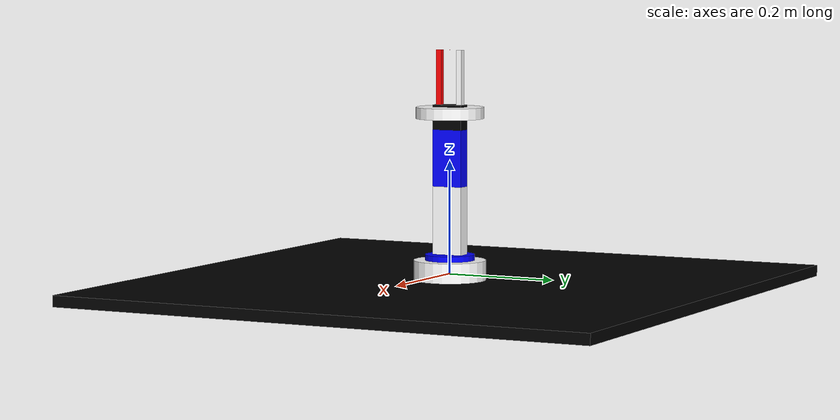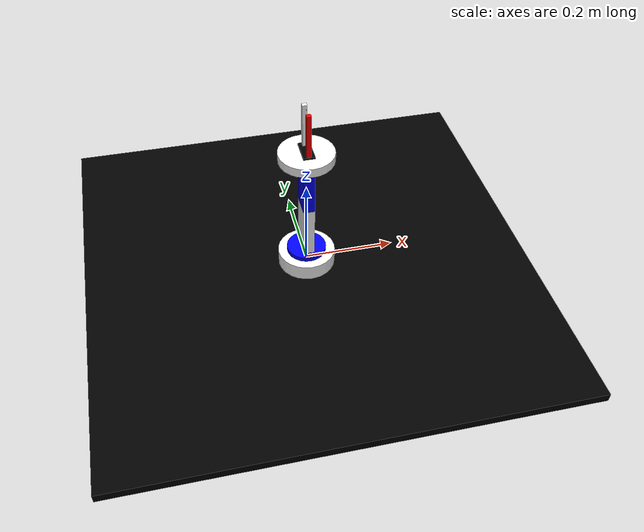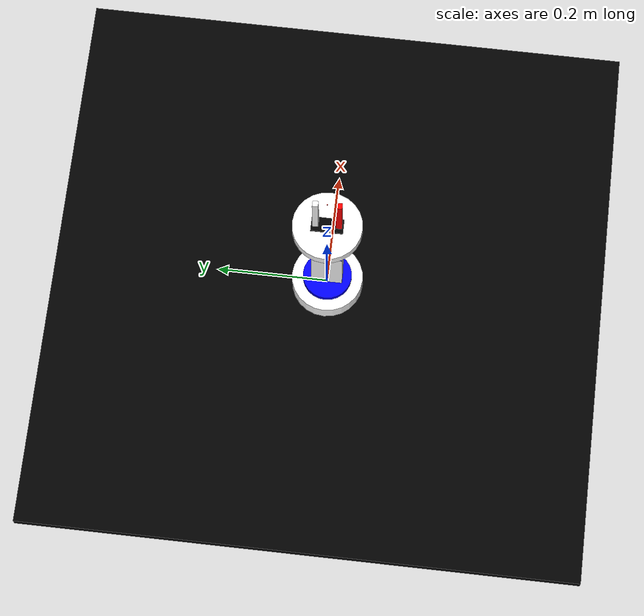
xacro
<?xml version="1.0"?>
<robot name="bw_robot_arm" xmlns:xacro="http://ros.org/wiki/xacro">

    <!-- Defining the colors used in this robot -->
    <material name="Black">
        <color rgba="0 0 0 1"/>
    </material>

    <material name="White">
        <color rgba="1 1 1 1"/>
    </material>

    <material name="Blue">
        <color rgba="0 0 1 1"/>
    </material>

    <material name="Red">
        <color rgba="1 0 0 1"/>
    </material>

    <!-- Constants -->
    <xacro:property name="M_PI" value="3.14159"/>

    <!-- link1 properties -->
    <xacro:property name="link1_width" value="0.044" />
    <xacro:property name="link1_len" value="0.010" />

    <!-- link2 properties -->
    <xacro:property name="link2_width" value="0.03" />
    <xacro:property name="link2_len" value="0.12" />

    <!-- link3 properties -->
    <xacro:property name="link3_width" value="0.03" />
    <xacro:property name="link3_len" value="0.10" />

    <!-- link4 properties -->
    <xacro:property name="link4_width" value="0.025" />
    <xacro:property name="link4_len" value="0.044" />

    <!-- link5 properties -->
    <xacro:property name="link5_width" value="0.06" />
    <xacro:property name="link5_len" value="0.02" />

    <!-- Left gripper -->
    <xacro:property name="left_gripper_len" value="0.01" />
    <xacro:property name="left_gripper_width" value="0.01" />
    <xacro:property name="left_gripper_height" value="0.12" />

    <!-- Right gripper -->
    <xacro:property name="right_gripper_len" value="0.01" />
    <xacro:property name="right_gripper_width" value="0.01" />
    <xacro:property name="right_gripper_height" value="0.12" />

    <!-- Gripper frame -->
    <xacro:property name="grasp_frame_radius" value="0.001" />

    <!-- Inertial matrix -->
    <xacro:macro name="inertial_matrix" params="mass">
        <inertial>
            <mass value="${mass}" />
            <inertia ixx="1.0" ixy="0.0" ixz="0.0" iyy="0.5" iyz="0.0" izz="1.0" />
        </inertial>
    </xacro:macro>

<!-- ///////////////////////////////////////   bottom_joint   ////////////////////////////////////////// -->
    <joint name="bottom_joint" type="fixed">
        <origin xyz="0 0 0" rpy="0 0 0" />
        <parent link="base_link"/>
        <child link="bottom_link"/>
    </joint>
    <link name="bottom_link">
        <visual>
              <origin xyz=" 0 0 -0.02"  rpy="0 0 0"/>
                  <geometry>
                       <box size="1 1 0.02" />
                  </geometry>
              <material name="Black" />
        </visual>
        <collision>
            <origin xyz=" 0 0 -0.02"  rpy="0 0 0"/>
            <geometry>
                <box size="1 1 0.02" />
            </geometry>
        </collision>
        <xacro:inertial_matrix mass="50"/>
    </link>
    <!-- /////////////////////////////////////   BASE LINK    ////////////////////////////////////////////// -->
    <link name="base_link">
        <visual>
            <origin xyz="0 0 0" rpy="0 0 0" />
            <geometry>
                <cylinder length="0.05" radius="0.064" />
            </geometry>
            <material name="White" />
        </visual>
        <collision>
            <origin xyz="0 0 0" rpy="0 0 0" />
            <geometry>
                <cylinder length="0.05" radius="0.064" />
            </geometry>
        </collision>
        <xacro:inertial_matrix mass="1"/>
    </link>
    <joint name="joint1" type="revolute">
        <parent link="base_link"/>
        <child link="link1"/>
        <origin xyz="0 0 0.025" rpy="0 ${M_PI/2} 0" />
        <axis xyz="-1 0 0" />
        <limit effort="20" velocity="1" lower="-1.57" upper="1.57"/>
        <dynamics damping="50" friction="1"/>
    </joint>

     <!-- /////////////////////////////////////   LINK1  ////////////////////////////////////////////// -->
    <link name="link1" >
        <visual>
            <origin xyz="-${link1_len/2} 0 0" rpy="0 ${M_PI/2} 0" />
            <geometry>
                <cylinder radius="${link1_width}" length="${link1_len}"/>
            </geometry>
            <material name="Blue" />
        </visual>
        <collision>
            <origin xyz="-${link1_len/2} 0 0" rpy="0 ${M_PI/2} 0" />
            <geometry>
                <cylinder radius="${link1_width}" length="${link1_len}"/>
            </geometry>
        </collision>
        <xacro:inertial_matrix mass="1"/>
    </link>

    <joint name="joint2" type="revolute">
        <parent link="link1"/>
        <child link="link2"/>
        <origin xyz="-${link1_len} 0 0.0" rpy="-${M_PI/2} 0 ${M_PI/2}" />
        <axis xyz="1 0 0" />
        <limit effort="30" velocity="1" lower="-1.57" upper="1.57" />
        <dynamics damping="50" friction="1"/>
    </joint>

    <!-- ///////////////////////////////////////   LINK2  ////////////////////////////////////////////// -->
    <link name="link2" >
        <visual>
            <origin xyz="0 0 ${link2_len/2}" rpy="0 0 0" />
            <geometry>
                <box size="0.055 0.025 0.12"/>
            </geometry>
            <material name="White" />
        </visual>

        <collision>
            <origin xyz="0 0 ${link2_len/2}" rpy="0 0 0" />
            <geometry>
                <box size="0.055 0.025 0.11"/>
            </geometry>
        </collision>
        <xacro:inertial_matrix mass="1"/>
    </link>

    <joint name="joint3" type="revolute">
        <parent link="link2"/>
        <child link="link3"/>
        <origin xyz="0 0 ${link2_len}" rpy="0 ${M_PI} 0" />
        <axis xyz="-1 0 0" />
        <limit effort="30" velocity="1" lower="-1.57" upper="1.57" />
        <dynamics damping="50" friction="1"/>
    </joint>

    <!-- /////////////////////////////////   LINK3  ///////////////////////////////////////////////////// -->
    <link name="link3" >
        <visual>
            <origin xyz="0 0 -${link3_len/2}" rpy="0 0 0" />
            <geometry>
                <box size="0.055 0.025 0.10"/>
            </geometry>
            <material name="Blue" />
        </visual>
        <collision>
            <origin xyz="0 0 -${link3_len/2}" rpy="0 0 0" />
            <geometry>
                <box size="0.055 0.025 0.10"/>
            </geometry>
        </collision>
        <xacro:inertial_matrix mass="1"/>
    </link>

    <joint name="joint4" type="revolute">
        <parent link="link3"/>
        <child link="link4"/>
        <origin xyz="0.0 0.0 -${link3_len}" rpy="0 ${M_PI/2} ${M_PI}" />
        <axis xyz="0 0 1" />
        <limit effort="30" velocity="1" lower="-1.57" upper="1.57" />
        <dynamics damping="50" friction="1"/>
    </joint>

    <link name="link4" >
        <visual>
            <origin xyz="${link4_len/2} 0 0" rpy="0 ${M_PI/2} 0" />
            <geometry>
                <box size="0.055 0.025 0.044"/>
            </geometry>
            <material name="Black" />
        </visual>
        <collision>
            <origin xyz="${link4_len/2} 0 0" rpy="0 ${M_PI/2} 0" />
            <geometry>
                <box size="0.055 0.025 0.044"/>
            </geometry>
        </collision>
        <xacro:inertial_matrix mass="1"/>
    </link>

    <joint name="joint5" type="revolute">
        <parent link="link4"/>
        <child link="link5"/>
        <origin xyz="${link5_len} 0.0 0.0" rpy="0 ${M_PI/2} 0" />
        <axis xyz="0 0 1" />
        <limit effort="30" velocity="1" lower="-1.57" upper="1.57" />
        <dynamics damping="50" friction="1"/>
    </joint>

    <!-- //////////////////////////////////   LINK5  ///////////////////////////////////////////////// -->
    <link name="link5">
        <visual>
            <origin xyz="0 0 ${link5_len/2}" rpy="0 0 0" />
            <geometry>
                <cylinder radius="${link5_width}" length="${link5_len}"/>
            </geometry>
            <material name="White" />
        </visual>
        <collision>
            <origin xyz="0 0 ${link5_len/2} " rpy="0 0 0" />
            <geometry>
                <cylinder radius="${link5_width}" length="${link5_len}"/>
            </geometry>
        </collision>
        <xacro:inertial_matrix mass="1"/>
    </link>

    <joint name="finger_joint1" type="prismatic">
        <parent link="link5"/>
        <child link="gripper_finger_link1"/>
        <origin xyz="-0.01 0 0" />
        <axis xyz="1 0 0" />
        <limit effort="10" lower="-0.04" upper="0.01" velocity="1.0"/>
        <dynamics damping="50" friction="1"/>
    </joint>
    <!-- //////////////////////////////////////   gripper   ////////////////////////////////////////////// -->
    <!-- LEFT GRIPPER AFT LINK -->
    <link name="gripper_finger_link1">
        <visual>
            <origin xyz="-0.01 0 0.06"/>
            <geometry>
                <box size="${left_gripper_len} ${left_gripper_width} ${left_gripper_height}" />
            </geometry>
            <material name="White" />
        </visual>
        <xacro:inertial_matrix mass="1"/>
    </link>

    <!-- RIGHT GRIPPER AFT LINK -->
    <link name="gripper_finger_link2">
        <visual>
            <origin xyz="0.01 0 0.06"/>
            <geometry>
                <box size="${right_gripper_len} ${right_gripper_width} ${right_gripper_height}" />
            </geometry>
            <material name="Red" />
        </visual>
        <xacro:inertial_matrix mass="1"/>
    </link>

    <joint name="finger_joint2" type="prismatic">
        <parent link="link5"/>
        <child link="gripper_finger_link2"/>
        <origin xyz="0.01 0 0" />
        <axis xyz="-1 0 0" />
        <limit effort="10" lower="-0.04" upper="0.01" velocity="1.0"/>
        <dynamics damping="50" friction="1"/>
        <mimic joint="finger_joint1" multiplier="1"/>
    </joint>

    <joint name="grasping_frame_joint" type="fixed">
      <parent link="link5"/>
      <child link="end_effector_link"/>
      <origin xyz="0 0 0.12" rpy="0 0 0"/>
    </joint>

      <!-- end effector link -->
    <link name="end_effector_link">
        <visual>
            <origin xyz="0 0 0" rpy="0 0 0"/>
            <geometry>
                <box size="0.001 0.001 0.001" />
            </geometry>
            <material name="Red"/>
        </visual>
        <xacro:inertial_matrix mass="0.01"/>
    </link>

    <!-- /////////////////////////////////   Gazebo   ////////////////////////////////////// -->
    <gazebo reference="bottom_link">
        <material>Gazebo/White</material>
    </gazebo>
    <gazebo reference="base_link">
        <material>Gazebo/White</material>
    </gazebo>
    <gazebo reference="link1">
        <material>Gazebo/Blue</material>
    </gazebo>
    <gazebo reference="link2">
        <material>Gazebo/White</material>
    </gazebo>
    <gazebo reference="link3">
        <material>Gazebo/Blue</material>
    </gazebo>
    <gazebo reference="link4">
        <material>Gazebo/Black</material>
    </gazebo>
    <gazebo reference="link5">
        <material>Gazebo/Red</material>
    </gazebo>
    <gazebo reference="gripper_finger_link1">
        <material>Gazebo/White</material>
    </gazebo>
    <gazebo reference="gripper_finger_link2">
        <material>Gazebo/White</material>
    </gazebo>
    <!-- end effector link -->
    <gazebo reference="end_effector_link">
        <material>Gazebo/Red</material>
    </gazebo>

    <!-- Transmissions for ROS Control -->
    <xacro:macro name="transmission_block" params="joint_name">
        <transmission name="tran1">
            <type>transmission_interface/SimpleTransmission</type>
            <joint name="${joint_name}">
                <hardwareInterface>hardware_interface/PositionJointInterface</hardwareInterface>
            </joint>
            <actuator name="motor1">
                <hardwareInterface>hardware_interface/PositionJointInterface</hardwareInterface>
                <mechanicalReduction>1</mechanicalReduction>
            </actuator>
        </transmission>
    </xacro:macro>

    <xacro:transmission_block joint_name="joint1"/>
    <xacro:transmission_block joint_name="joint2"/>
    <xacro:transmission_block joint_name="joint3"/>
    <xacro:transmission_block joint_name="joint4"/>
    <xacro:transmission_block joint_name="joint5"/>
    <xacro:transmission_block joint_name="finger_joint1"/>
    <xacro:transmission_block joint_name="finger_joint2"/>

    <!-- ros_control plugin -->
    <gazebo>
        <plugin name="gazebo_ros_control" filename="libgazebo_ros_control.so">
            <robotNamespace>/bw_robot_arm</robotNamespace>
        </plugin>
    </gazebo>
</robot>
